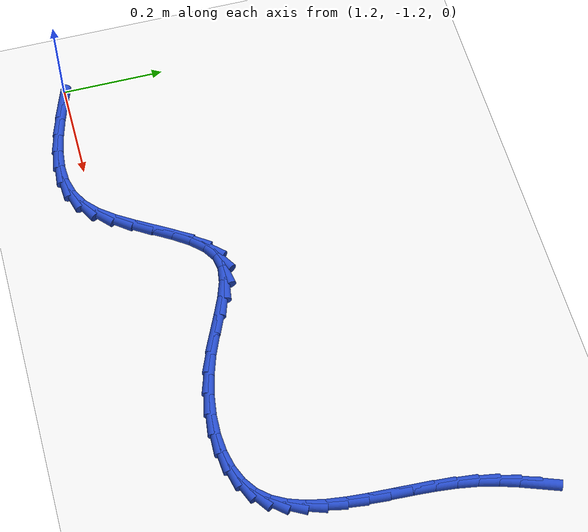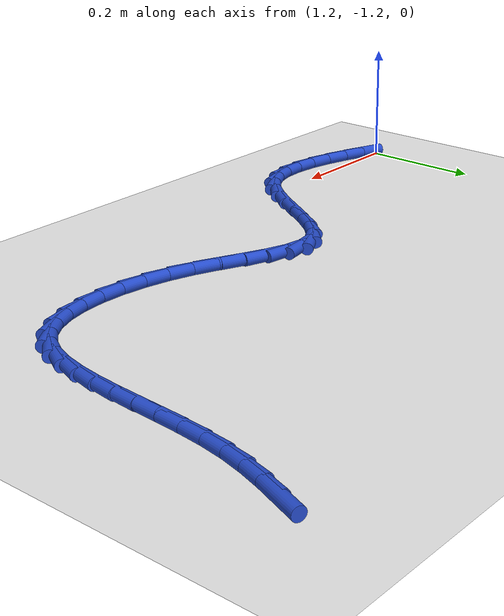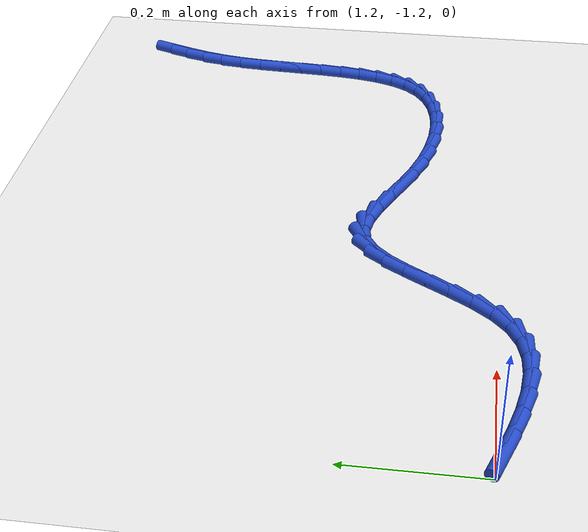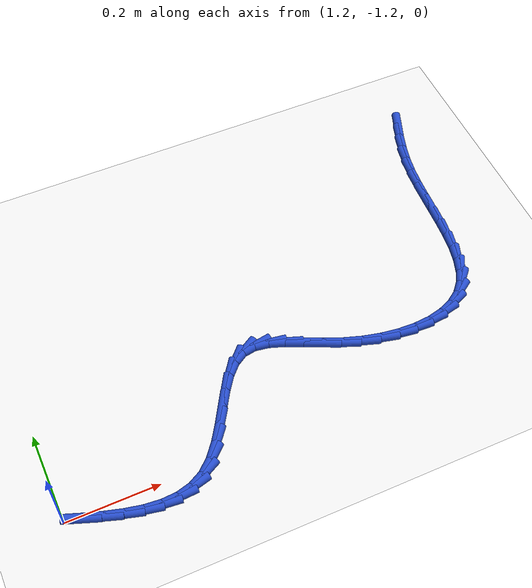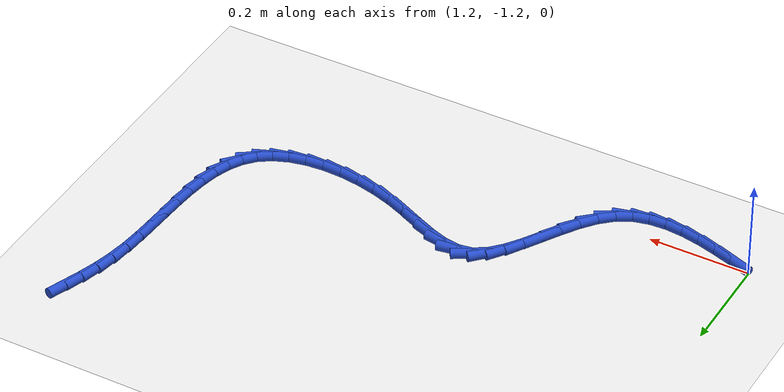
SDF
<sdf version="1.6">
 <world name="default">
  <model name="ground_plane">
   <static>1</static>
   <link name="link">
    <collision name="collision">
     <geometry><plane><normal>0 0 1</normal><size>100 100</size></plane></geometry>
     <surface><friction><ode><mu>100</mu><mu2>50</mu2></ode></friction></surface>
    </collision>
    <visual name="visual">
     <cast_shadows>0</cast_shadows>
     <geometry><plane><normal>0 0 1</normal><size>100 100</size></plane></geometry>
     <material>
      <script><uri>file://media/materials/scripts/gazebo.material</uri><name>Gazebo/WhiteGlow</name></script>
     </material>
    </visual>
   </link>
  </model>
  <model name="line">
   <link name="link_157">
    <pose>2.261260136814178 -0.5597055864606663 0.01 0 1.57 1.217129307654893</pose>
    <collision name="collision">
     <geometry><cylinder><radius>0.01</radius><length>0.08</length></cylinder></geometry>
    </collision>
    <visual name="visual">
     <material>
      <script><name>Gazebo/Blue</name><uri>file://media/materials/scripts/gazebo.material</uri></script>
     </material>
     <geometry><cylinder><radius>0.01</radius><length>0.08</length></cylinder></geometry>
    </visual>
   </link>
   <link name="link_158">
    <pose>2.249005938281214 -0.5928977311730181 0.01 0 1.57 1.2628600593093253</pose>
    <collision name="collision">
     <geometry><cylinder><radius>0.01</radius><length>0.08</length></cylinder></geometry>
    </collision>
    <visual name="visual">
     <material>
      <script><name>Gazebo/Blue</name><uri>file://media/materials/scripts/gazebo.material</uri></script>
     </material>
     <geometry><cylinder><radius>0.01</radius><length>0.08</length></cylinder></geometry>
    </visual>
   </link>
   <link name="link_159">
    <pose>2.2381042015781096 -0.6271741539656852 0.01 0 1.57 1.3262254597317815</pose>
    <collision name="collision">
     <geometry><cylinder><radius>0.01</radius><length>0.08</length></cylinder></geometry>
    </collision>
    <visual name="visual">
     <material>
      <script><name>Gazebo/Blue</name><uri>file://media/materials/scripts/gazebo.material</uri></script>
     </material>
     <geometry><cylinder><radius>0.01</radius><length>0.08</length></cylinder></geometry>
    </visual>
   </link>
   <link name="link_160">
    <pose>2.229181882944512 -0.6629253838331858 0.01 0 1.57 1.4020823975552994</pose>
    <collision name="collision">
     <geometry><cylinder><radius>0.01</radius><length>0.08</length></cylinder></geometry>
    </collision>
    <visual name="visual">
     <material>
      <script><name>Gazebo/Blue</name><uri>file://media/materials/scripts/gazebo.material</uri></script>
     </material>
     <geometry><cylinder><radius>0.01</radius><length>0.08</length></cylinder></geometry>
    </visual>
   </link>
   <link name="link_161">
    <pose>2.2227848900213614 -0.7004811562636643 0.01 0 1.57 1.4645811426089117</pose>
    <collision name="collision">
     <geometry><cylinder><radius>0.01</radius><length>0.08</length></cylinder></geometry>
    </collision>
    <visual name="visual">
     <material>
      <script><name>Gazebo/Blue</name><uri>file://media/materials/scripts/gazebo.material</uri></script>
     </material>
     <geometry><cylinder><radius>0.01</radius><length>0.08</length></cylinder></geometry>
    </visual>
   </link>
   <link name="link_162">
    <pose>2.2186203568760314 -0.7395420535284734 0.01 0 1.57 1.5027045556500538</pose>
    <collision name="collision">
     <geometry><cylinder><radius>0.01</radius><length>0.08</length></cylinder></geometry>
    </collision>
    <visual name="visual">
     <material>
      <script><name>Gazebo/Blue</name><uri>file://media/materials/scripts/gazebo.material</uri></script>
     </material>
     <geometry><cylinder><radius>0.01</radius><length>0.08</length></cylinder></geometry>
    </visual>
   </link>
   <link name="link_163">
    <pose>2.215899647648567 -0.7794367872840641 0.01 0 1.57 1.5191110949993512</pose>
    <collision name="collision">
     <geometry><cylinder><radius>0.01</radius><length>0.08</length></cylinder></geometry>
    </collision>
    <visual name="visual">
     <material>
      <script><name>Gazebo/Blue</name><uri>file://media/materials/scripts/gazebo.material</uri></script>
     </material>
     <geometry><cylinder><radius>0.01</radius><length>0.08</length></cylinder></geometry>
    </visual>
   </link>
   <link name="link_164">
    <pose>2.2138276822611473 -0.8194892354623551 0.01 0 1.57 1.5147439248105257</pose>
    <collision name="collision">
     <geometry><cylinder><radius>0.01</radius><length>0.08</length></cylinder></geometry>
    </collision>
    <visual name="visual">
     <material>
      <script><name>Gazebo/Blue</name><uri>file://media/materials/scripts/gazebo.material</uri></script>
     </material>
     <geometry><cylinder><radius>0.01</radius><length>0.08</length></cylinder></geometry>
    </visual>
   </link>
   <link name="link_165">
    <pose>2.2116093806359536 -0.8590232759952661 0.01 0 1.57 1.4885680148377494</pose>
    <collision name="collision">
     <geometry><cylinder><radius>0.01</radius><length>0.08</length></cylinder></geometry>
    </collision>
    <visual name="visual">
     <material>
      <script><name>Gazebo/Blue</name><uri>file://media/materials/scripts/gazebo.material</uri></script>
     </material>
     <geometry><cylinder><radius>0.01</radius><length>0.08</length></cylinder></geometry>
    </visual>
   </link>
   <link name="link_166">
    <pose>2.2084496626951635 -0.8973627868147135 0.01 0 1.57 1.4373369751417902</pose>
    <collision name="collision">
     <geometry><cylinder><radius>0.01</radius><length>0.08</length></cylinder></geometry>
    </collision>
    <visual name="visual">
     <material>
      <script><name>Gazebo/Blue</name><uri>file://media/materials/scripts/gazebo.material</uri></script>
     </material>
     <geometry><cylinder><radius>0.01</radius><length>0.08</length></cylinder></geometry>
    </visual>
   </link>
   <link name="link_167">
    <pose>2.2035534483609576 -0.9338316458526171 0.01 0 1.57 1.3552322893454953</pose>
    <collision name="collision">
     <geometry><cylinder><radius>0.01</radius><length>0.08</length></cylinder></geometry>
    </collision>
    <visual name="visual">
     <material>
      <script><name>Gazebo/Blue</name><uri>file://media/materials/scripts/gazebo.material</uri></script>
     </material>
     <geometry><cylinder><radius>0.01</radius><length>0.08</length></cylinder></geometry>
    </visual>
   </link>
   <link name="link_168">
    <pose>2.196125657555516 -0.9677537310408956 0.01 0 1.57 1.2338391454512634</pose>
    <collision name="collision">
     <geometry><cylinder><radius>0.01</radius><length>0.08</length></cylinder></geometry>
    </collision>
    <visual name="visual">
     <material>
      <script><name>Gazebo/Blue</name><uri>file://media/materials/scripts/gazebo.material</uri></script>
     </material>
     <geometry><cylinder><radius>0.01</radius><length>0.08</length></cylinder></geometry>
    </visual>
   </link>
   <link name="link_169">
    <pose>2.185371210201019 -0.9984529203114678 0.01 0 1.57 1.0640628635582494</pose>
    <collision name="collision">
     <geometry><cylinder><radius>0.01</radius><length>0.08</length></cylinder></geometry>
    </collision>
    <visual name="visual">
     <material>
      <script><name>Gazebo/Blue</name><uri>file://media/materials/scripts/gazebo.material</uri></script>
     </material>
     <geometry><cylinder><radius>0.01</radius><length>0.08</length></cylinder></geometry>
    </visual>
   </link>
   <link name="link_170">
    <pose>2.1704950262196463 -1.0252530915962526 0.01 0 1.57 0.8432153715772612</pose>
    <collision name="collision">
     <geometry><cylinder><radius>0.01</radius><length>0.08</length></cylinder></geometry>
    </collision>
    <visual name="visual">
     <material>
      <script><name>Gazebo/Blue</name><uri>file://media/materials/scripts/gazebo.material</uri></script>
     </material>
     <geometry><cylinder><radius>0.01</radius><length>0.08</length></cylinder></geometry>
    </visual>
   </link>
   <link name="link_171">
    <pose>2.1507020545984536 -1.0474781383409464 0.01 0 1.57 0.5976590459805747</pose>
    <collision name="collision">
     <geometry><cylinder><radius>0.01</radius><length>0.08</length></cylinder></geometry>
    </collision>
    <visual name="visual">
     <material>
      <script><name>Gazebo/Blue</name><uri>file://media/materials/scripts/gazebo.material</uri></script>
     </material>
     <geometry><cylinder><radius>0.01</radius><length>0.08</length></cylinder></geometry>
    </visual>
   </link>
   <link name="link_172">
    <pose>2.1255162753682133 -1.0646222412068849 0.01 0 1.57 0.3854018478269934</pose>
    <collision name="collision">
     <geometry><cylinder><radius>0.01</radius><length>0.08</length></cylinder></geometry>
    </collision>
    <visual name="visual">
     <material>
      <script><name>Gazebo/Blue</name><uri>file://media/materials/scripts/gazebo.material</uri></script>
     </material>
     <geometry><cylinder><radius>0.01</radius><length>0.08</length></cylinder></geometry>
    </visual>
   </link>
   <link name="link_173">
    <pose>2.0955699740637823 -1.0767711541899838 0.01 0 1.57 0.2144171736301489</pose>
    <collision name="collision">
     <geometry><cylinder><radius>0.01</radius><length>0.08</length></cylinder></geometry>
    </collision>
    <visual name="visual">
     <material>
      <script><name>Gazebo/Blue</name><uri>file://media/materials/scripts/gazebo.material</uri></script>
     </material>
     <geometry><cylinder><radius>0.01</radius><length>0.08</length></cylinder></geometry>
    </visual>
   </link>
   <link name="link_174">
    <pose>2.061735950624144 -1.0841390091635066 0.01 0 1.57 0.07586521446612565</pose>
    <collision name="collision">
     <geometry><cylinder><radius>0.01</radius><length>0.08</length></cylinder></geometry>
    </collision>
    <visual name="visual">
     <material>
      <script><name>Gazebo/Blue</name><uri>file://media/materials/scripts/gazebo.material</uri></script>
     </material>
     <geometry><cylinder><radius>0.01</radius><length>0.08</length></cylinder></geometry>
    </visual>
   </link>
   <link name="link_175">
    <pose>2.0248870049882854 -1.0869399380007165 0.01 0 1.57 -0.039779540799045186</pose>
    <collision name="collision">
     <geometry><cylinder><radius>0.01</radius><length>0.08</length></cylinder></geometry>
    </collision>
    <visual name="visual">
     <material>
      <script><name>Gazebo/Blue</name><uri>file://media/materials/scripts/gazebo.material</uri></script>
     </material>
     <geometry><cylinder><radius>0.01</radius><length>0.08</length></cylinder></geometry>
    </visual>
   </link>
   <link name="link_176">
    <pose>1.9858959370951885 -1.0853880725748766 0.01 0 1.57 -0.14041296587120658</pose>
    <collision name="collision">
     <geometry><cylinder><radius>0.01</radius><length>0.08</length></cylinder></geometry>
    </collision>
    <visual name="visual">
     <material>
      <script><name>Gazebo/Blue</name><uri>file://media/materials/scripts/gazebo.material</uri></script>
     </material>
     <geometry><cylinder><radius>0.01</radius><length>0.08</length></cylinder></geometry>
    </visual>
   </link>
   <link name="link_177">
    <pose>1.9456355468838404 -1.0796975447592503 0.01 0 1.57 -0.23222595972171065</pose>
    <collision name="collision">
     <geometry><cylinder><radius>0.01</radius><length>0.08</length></cylinder></geometry>
    </collision>
    <visual name="visual">
     <material>
      <script><name>Gazebo/Blue</name><uri>file://media/materials/scripts/gazebo.material</uri></script>
     </material>
     <geometry><cylinder><radius>0.01</radius><length>0.08</length></cylinder></geometry>
    </visual>
   </link>
   <link name="link_178">
    <pose>1.904978634293224 -1.0700824864270997 0.01 0 1.57 -0.3202246686360526</pose>
    <collision name="collision">
     <geometry><cylinder><radius>0.01</radius><length>0.08</length></cylinder></geometry>
    </collision>
    <visual name="visual">
     <material>
      <script><name>Gazebo/Blue</name><uri>file://media/materials/scripts/gazebo.material</uri></script>
     </material>
     <geometry><cylinder><radius>0.01</radius><length>0.08</length></cylinder></geometry>
    </visual>
   </link>
   <link name="link_179">
    <pose>1.864797999085308 -1.0567570301777354 0.01 0 1.57 -0.3990751596433221</pose>
    <collision name="collision">
     <geometry><cylinder><radius>0.01</radius><length>0.08</length></cylinder></geometry>
    </collision>
    <visual name="visual">
     <material>
      <script><name>Gazebo/Blue</name><uri>file://media/materials/scripts/gazebo.material</uri></script>
     </material>
     <geometry><cylinder><radius>0.01</radius><length>0.08</length></cylinder></geometry>
    </visual>
   </link>
   <link name="link_180">
    <pose>1.8258677692193017 -1.040340016565031 0.01 0 1.57 -0.4350703313642029</pose>
    <collision name="collision">
     <geometry><cylinder><radius>0.01</radius><length>0.08</length></cylinder></geometry>
    </collision>
    <visual name="visual">
     <material>
      <script><name>Gazebo/Blue</name><uri>file://media/materials/scripts/gazebo.material</uri></script>
     </material>
     <geometry><cylinder><radius>0.01</radius><length>0.08</length></cylinder></geometry>
    </visual>
   </link>
   <link name="link_181">
    <pose>1.7885816817696503 -1.023010480773991 0.01 0 1.57 -0.4177635058280105</pose>
    <collision name="collision">
     <geometry><cylinder><radius>0.01</radius><length>0.08</length></cylinder></geometry>
    </collision>
    <visual name="visual">
     <material>
      <script><name>Gazebo/Blue</name><uri>file://media/materials/scripts/gazebo.material</uri></script>
     </material>
     <geometry><cylinder><radius>0.01</radius><length>0.08</length></cylinder></geometry>
    </visual>
   </link>
   <link name="link_182">
    <pose>1.7532418216231354 -1.0073233745976689 0.01 0 1.57 -0.3341873636115477</pose>
    <collision name="collision">
     <geometry><cylinder><radius>0.01</radius><length>0.08</length></cylinder></geometry>
    </collision>
    <visual name="visual">
     <material>
      <script><name>Gazebo/Blue</name><uri>file://media/materials/scripts/gazebo.material</uri></script>
     </material>
     <geometry><cylinder><radius>0.01</radius><length>0.08</length></cylinder></geometry>
    </visual>
   </link>
   <link name="link_183">
    <pose>1.7201502736665346 -0.9958336498291156 0.01 0 1.57 -0.15388863045262613</pose>
    <collision name="collision">
     <geometry><cylinder><radius>0.01</radius><length>0.08</length></cylinder></geometry>
    </collision>
    <visual name="visual">
     <material>
      <script><name>Gazebo/Blue</name><uri>file://media/materials/scripts/gazebo.material</uri></script>
     </material>
     <geometry><cylinder><radius>0.01</radius><length>0.08</length></cylinder></geometry>
    </visual>
   </link>
   <link name="link_184">
    <pose>1.6896091227866246 -0.9910962582613828 0.01 0 1.57 0.16344511635615325</pose>
    <collision name="collision">
     <geometry><cylinder><radius>0.01</radius><length>0.08</length></cylinder></geometry>
    </collision>
    <visual name="visual">
     <material>
      <script><name>Gazebo/Blue</name><uri>file://media/materials/scripts/gazebo.material</uri></script>
     </material>
     <geometry><cylinder><radius>0.01</radius><length>0.08</length></cylinder></geometry>
    </visual>
   </link>
   <link name="link_185">
    <pose>1.661919708176816 -0.9956626935074603 0.01 0 1.57 0.5474118582652986</pose>
    <collision name="collision">
     <geometry><cylinder><radius>0.01</radius><length>0.08</length></cylinder></geometry>
    </collision>
    <visual name="visual">
     <material>
      <script><name>Gazebo/Blue</name><uri>file://media/materials/scripts/gazebo.material</uri></script>
     </material>
     <geometry><cylinder><radius>0.01</radius><length>0.08</length></cylinder></geometry>
    </visual>
   </link>
   <link name="link_186">
    <pose>1.6371040455479269 -1.0107890763946843 0.01 0 1.57 0.8089875273480335</pose>
    <collision name="collision">
     <geometry><cylinder><radius>0.01</radius><length>0.08</length></cylinder></geometry>
    </collision>
    <visual name="visual">
     <material>
      <script><name>Gazebo/Blue</name><uri>file://media/materials/scripts/gazebo.material</uri></script>
     </material>
     <geometry><cylinder><radius>0.01</radius><length>0.08</length></cylinder></geometry>
    </visual>
   </link>
   <link name="link_187">
    <pose>1.6144871205651188 -1.0344990256221822 0.01 0 1.57 0.9527877324938481</pose>
    <collision name="collision">
     <geometry><cylinder><radius>0.01</radius><length>0.08</length></cylinder></geometry>
    </collision>
    <visual name="visual">
     <material>
      <script><name>Gazebo/Blue</name><uri>file://media/materials/scripts/gazebo.material</uri></script>
     </material>
     <geometry><cylinder><radius>0.01</radius><length>0.08</length></cylinder></geometry>
    </visual>
   </link>
   <link name="link_188">
    <pose>1.5932869898739384 -1.0643202726807386 0.01 0 1.57 1.0196977595495003</pose>
    <collision name="collision">
     <geometry><cylinder><radius>0.01</radius><length>0.08</length></cylinder></geometry>
    </collision>
    <visual name="visual">
     <material>
      <script><name>Gazebo/Blue</name><uri>file://media/materials/scripts/gazebo.material</uri></script>
     </material>
     <geometry><cylinder><radius>0.01</radius><length>0.08</length></cylinder></geometry>
    </visual>
   </link>
   <link name="link_189">
    <pose>1.572721710119934 -1.0977805490611354 0.01 0 1.57 1.0317337670708024</pose>
    <collision name="collision">
     <geometry><cylinder><radius>0.01</radius><length>0.08</length></cylinder></geometry>
    </collision>
    <visual name="visual">
     <material>
      <script><name>Gazebo/Blue</name><uri>file://media/materials/scripts/gazebo.material</uri></script>
     </material>
     <geometry><cylinder><radius>0.01</radius><length>0.08</length></cylinder></geometry>
    </visual>
   </link>
   <link name="link_190">
    <pose>1.5520093379486501 -1.1324075862541565 0.01 0 1.57 0.9947922141601588</pose>
    <collision name="collision">
     <geometry><cylinder><radius>0.01</radius><length>0.08</length></cylinder></geometry>
    </collision>
    <visual name="visual">
     <material>
      <script><name>Gazebo/Blue</name><uri>file://media/materials/scripts/gazebo.material</uri></script>
     </material>
     <geometry><cylinder><radius>0.01</radius><length>0.08</length></cylinder></geometry>
    </visual>
   </link>
   <link name="link_191">
    <pose>1.530367930005635 -1.165729115750586 0.01 0 1.57 0.9019155907526173</pose>
    <collision name="collision">
     <geometry><cylinder><radius>0.01</radius><length>0.08</length></cylinder></geometry>
    </collision>
    <visual name="visual">
     <material>
      <script><name>Gazebo/Blue</name><uri>file://media/materials/scripts/gazebo.material</uri></script>
     </material>
     <geometry><cylinder><radius>0.01</radius><length>0.08</length></cylinder></geometry>
    </visual>
   </link>
   <link name="link_192">
    <pose>1.507015542936434 -1.1952728690412067 0.01 0 1.57 0.7335412287899687</pose>
    <collision name="collision">
     <geometry><cylinder><radius>0.01</radius><length>0.08</length></cylinder></geometry>
    </collision>
    <visual name="visual">
     <material>
      <script><name>Gazebo/Blue</name><uri>file://media/materials/scripts/gazebo.material</uri></script>
     </material>
     <geometry><cylinder><radius>0.01</radius><length>0.08</length></cylinder></geometry>
    </visual>
   </link>
   <link name="link_193">
    <pose>1.4811705060887048 -1.218567392293427 0.01 0 1.57 0.48943843604979553</pose>
    <collision name="collision">
     <geometry><cylinder><radius>0.01</radius><length>0.08</length></cylinder></geometry>
    </collision>
    <visual name="visual">
     <material>
      <script><name>Gazebo/Blue</name><uri>file://media/materials/scripts/gazebo.material</uri></script>
     </material>
     <geometry><cylinder><radius>0.01</radius><length>0.08</length></cylinder></geometry>
    </visual>
   </link>
   <link name="link_194">
    <pose>1.4523173585263396 -1.2339365127701092 0.01 0 1.57 0.24933465072271802</pose>
    <collision name="collision">
     <geometry><cylinder><radius>0.01</radius><length>0.08</length></cylinder></geometry>
    </collision>
    <visual name="visual">
     <material>
      <script><name>Gazebo/Blue</name><uri>file://media/materials/scripts/gazebo.material</uri></script>
     </material>
     <geometry><cylinder><radius>0.01</radius><length>0.08</length></cylinder></geometry>
    </visual>
   </link>
   <link name="link_195">
    <pose>1.4207045514250154 -1.2419861865372321 0.01 0 1.57 0.051237779480810305</pose>
    <collision name="collision">
     <geometry><cylinder><radius>0.01</radius><length>0.08</length></cylinder></geometry>
    </collision>
    <visual name="visual">
     <material>
      <script><name>Gazebo/Blue</name><uri>file://media/materials/scripts/gazebo.material</uri></script>
     </material>
     <geometry><cylinder><radius>0.01</radius><length>0.08</length></cylinder></geometry>
    </visual>
   </link>
   <link name="link_196">
    <pose>1.386716708179969 -1.2437291737153913 0.01 0 1.57 -0.09837820492114564</pose>
    <collision name="collision">
     <geometry><cylinder><radius>0.01</radius><length>0.08</length></cylinder></geometry>
    </collision>
    <visual name="visual">
     <material>
      <script><name>Gazebo/Blue</name><uri>file://media/materials/scripts/gazebo.material</uri></script>
     </material>
     <geometry><cylinder><radius>0.01</radius><length>0.08</length></cylinder></geometry>
    </visual>
   </link>
   <link name="link_197">
    <pose>1.3507384521864378 -1.2401782344251822 0.01 0 1.57 -0.20544884198842478</pose>
    <collision name="collision">
     <geometry><cylinder><radius>0.01</radius><length>0.08</length></cylinder></geometry>
    </collision>
    <visual name="visual">
     <material>
      <script><name>Gazebo/Blue</name><uri>file://media/materials/scripts/gazebo.material</uri></script>
     </material>
     <geometry><cylinder><radius>0.01</radius><length>0.08</length></cylinder></geometry>
    </visual>
   </link>
   <link name="link_198">
    <pose>1.3131544068396601 -1.2323461287872 0.01 0 1.57 -0.27861670649738807</pose>
    <collision name="collision">
     <geometry><cylinder><radius>0.01</radius><length>0.08</length></cylinder></geometry>
    </collision>
    <visual name="visual">
     <material>
      <script><name>Gazebo/Blue</name><uri>file://media/materials/scripts/gazebo.material</uri></script>
     </material>
     <geometry><cylinder><radius>0.01</radius><length>0.08</length></cylinder></geometry>
    </visual>
   </link>
   <link name="link_199">
    <pose>1.2743491955348734 -1.2212456169220407 0.01 0 1.57 -0.3249763934364726</pose>
    <collision name="collision">
     <geometry><cylinder><radius>0.01</radius><length>0.08</length></cylinder></geometry>
    </collision>
    <visual name="visual">
     <material>
      <script><name>Gazebo/Blue</name><uri>file://media/materials/scripts/gazebo.material</uri></script>
     </material>
     <geometry><cylinder><radius>0.01</radius><length>0.08</length></cylinder></geometry>
    </visual>
   </link>
   <link name="link_200">
    <pose>1.2347074416673145 -1.2078894589503 0.01 0 1.57 -0.34920107957568186</pose>
    <collision name="collision">
     <geometry><cylinder><radius>0.01</radius><length>0.08</length></cylinder></geometry>
    </collision>
    <visual name="visual">
     <material>
      <script><name>Gazebo/Blue</name><uri>file://media/materials/scripts/gazebo.material</uri></script>
     </material>
     <geometry><cylinder><radius>0.01</radius><length>0.08</length></cylinder></geometry>
    </visual>
   </link>
  </model>
 </world>
</sdf>
